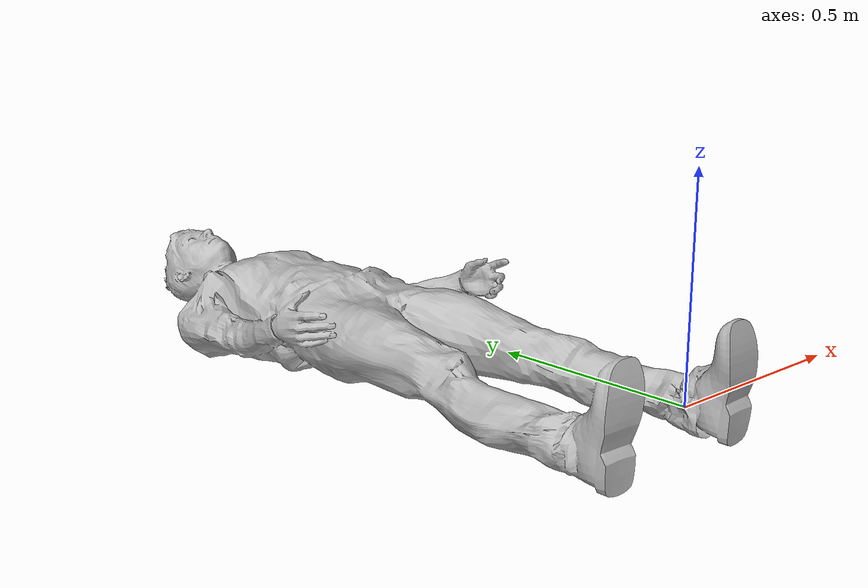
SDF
<?xml version='1.7'?>
<sdf version="1.7">
  <model name="dummy">
    <link name="link">
      <inertial>
        <pose>0 0 0.5 0 0 0</pose>
        <mass>80.0</mass>
        <inertia>
          <ixx>24.88</ixx>
          <ixy>0.0</ixy>
          <ixz>0.0</ixz>
          <iyy>25.73</iyy>
          <iyz>0.0</iyz>
          <izz>2.48</izz>
        </inertia>
      </inertial>

      <visual name="visual">
        <pose>0 0 0 0 0 0</pose>
        <geometry>
            <mesh>
                <uri>model://Businessman/Businessman.dae</uri>
            </mesh>
        </geometry>
      </visual>
    </link>
  </model>
</sdf>
